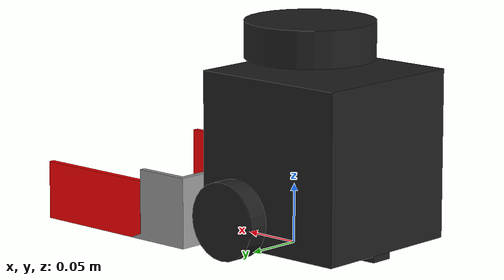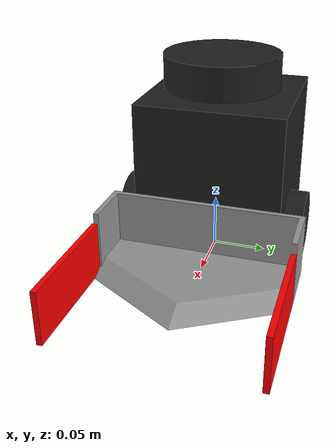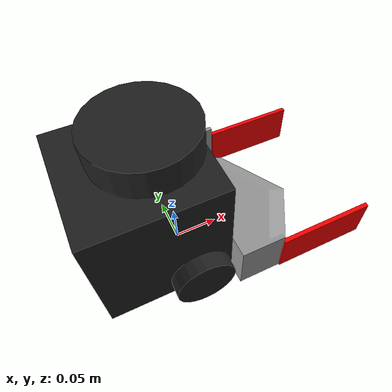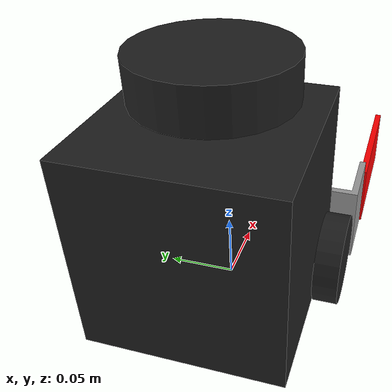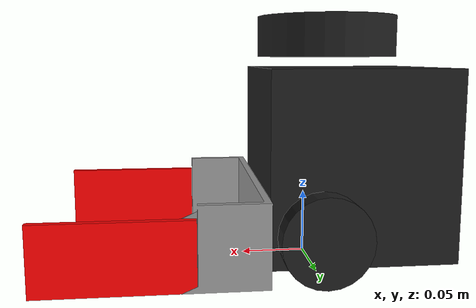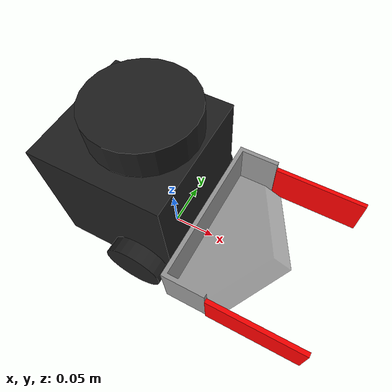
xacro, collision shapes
<?xml version="1.0" ?>
<robot name="turtlebot3_burger" xmlns:xacro="http://ros.org/wiki/xacro">
  <xacro:include filename="$(find turtlebot3_description)/urdf/common_properties.xacro"/>
  <xacro:include filename="$(find turtlebot3_description)/urdf/turtlebot3_burger.gazebo.xacro"/>
  <xacro:include filename="$(find turtlebot3_description)/urdf/turtlebot3.trans"/>

  <link name="base_footprint"/>

  <joint name="base_joint" type="fixed">
    <parent link="base_footprint"/>
    <child link="base_link"/>
    <origin xyz="0.0 0.0 0.010" rpy="0 0 0"/>
  </joint>

  <link name="base_link">
    <visual>
      <origin xyz="-0.032 0 0.0" rpy="0 0 0"/>
      <geometry>
        <mesh filename="package://turtlebot3_description/meshes/bases/burger_base.stl" scale="0.001 0.001 0.001"/>
      </geometry>
      <material name="light_black"/>
    </visual>

    <collision>
      <origin xyz="-0.032 0 0.070" rpy="0 0 0"/>
      <geometry>
        <box size="0.140 0.140 0.143"/>
      </geometry>
    </collision>

    <inertial>
      <origin xyz="0 0 0" rpy="0 0 0"/>
      <mass value="8.2573504e-01"/>
      <inertia ixx="2.2124416e-03" ixy="-1.2294101e-05" ixz="3.4938785e-05"
               iyy="2.1193702e-03" iyz="-5.0120904e-06"
               izz="2.0064271e-03" />
    </inertial>
  </link>

  <joint name="wheel_left_joint" type="continuous">
    <parent link="base_link"/>
    <child link="wheel_left_link"/>
    <origin xyz="0.0 0.08 0.023" rpy="-1.57 0 0"/>
    <axis xyz="0 0 1"/>
  </joint>

  <link name="wheel_left_link">
    <visual>
      <origin xyz="0 0 0" rpy="1.57 0 0"/>
      <geometry>
        <mesh filename="package://turtlebot3_description/meshes/wheels/left_tire.stl" scale="0.001 0.001 0.001"/>
      </geometry>
      <material name="dark"/>
    </visual>

    <collision>
      <origin xyz="0 0 0" rpy="0 0 0"/>
      <geometry>
        <cylinder length="0.018" radius="0.033"/>
      </geometry>
    </collision>

    <inertial>
      <origin xyz="0 0 0" />
      <mass value="2.8498940e-02" />
      <inertia ixx="1.1175580e-05" ixy="-4.2369783e-11" ixz="-5.9381719e-09"
               iyy="1.1192413e-05" iyz="-1.4400107e-11"
               izz="2.0712558e-05" />
      </inertial>
  </link>

  <joint name="wheel_right_joint" type="continuous">
    <parent link="base_link"/>
    <child link="wheel_right_link"/>
    <origin xyz="0.0 -0.080 0.023" rpy="-1.57 0 0"/>
    <axis xyz="0 0 1"/>
  </joint>

  <link name="wheel_right_link">
    <visual>
      <origin xyz="0 0 0" rpy="1.57 0 0"/>
      <geometry>
        <mesh filename="package://turtlebot3_description/meshes/wheels/right_tire.stl" scale="0.001 0.001 0.001"/>
      </geometry>
      <material name="dark"/>
    </visual>

    <collision>
      <origin xyz="0 0 0" rpy="0 0 0"/>
      <geometry>
        <cylinder length="0.018" radius="0.033"/>
      </geometry>
    </collision>

    <inertial>
      <origin xyz="0 0 0" />
      <mass value="2.8498940e-02" />
      <inertia ixx="1.1175580e-05" ixy="-4.2369783e-11" ixz="-5.9381719e-09"
               iyy="1.1192413e-05" iyz="-1.4400107e-11"
               izz="2.0712558e-05" />
      </inertial>
  </link>

  <joint name="caster_back_joint" type="fixed">
    <parent link="base_link"/>
    <child link="caster_back_link"/>
    <origin xyz="-0.081 0 -0.004" rpy="-1.57 0 0"/>
  </joint>

  <link name="caster_back_link">
    <collision>
      <origin xyz="0 0.001 0" rpy="0 0 0"/>
      <geometry>
        <box size="0.030 0.009 0.020"/>
      </geometry>
    </collision>

    <inertial>
      <origin xyz="0 0 0" />
      <mass value="0.005" />
      <inertia ixx="0.001" ixy="0.0" ixz="0.0"
               iyy="0.001" iyz="0.0"
               izz="0.001" />
    </inertial>
  </link>

  <joint name="imu_joint" type="fixed">
    <parent link="base_link"/>
    <child link="imu_link"/>
    <origin xyz="-0.032 0 0.068" rpy="0 0 0"/>
  </joint>

  <link name="imu_link"/>

  <joint name="scan_joint" type="fixed">
    <parent link="base_link"/>
    <child link="base_scan"/>
    <origin xyz="-0.032 0 0.172" rpy="0 0 0"/>
  </joint>

  <link name="base_scan">
    <visual>
      <origin xyz="0 0 0.0" rpy="0 0 0"/>
      <geometry>
        <mesh filename="package://turtlebot3_description/meshes/sensors/lds.stl" scale="0.001 0.001 0.001"/>
      </geometry>
      <material name="dark"/>
    </visual>

    <collision>
      <origin xyz="0.015 0 -0.0065" rpy="0 0 0"/>
      <geometry>
        <cylinder length="0.0315" radius="0.055"/>
      </geometry>
    </collision>

    <inertial>
      <mass value="0.114" />
      <origin xyz="0 0 0" />
      <inertia ixx="0.001" ixy="0.0" ixz="0.0"
               iyy="0.001" iyz="0.0"
               izz="0.001" />
    </inertial>
  </link>

  <link name="tray">
    <inertial>
      <origin xyz="-0.09 0.0 0.0" rpy="0.0 0.0 0.0"/>
      <mass value="0.03"/>
      <inertia ixx="0.0" ixy="0.0" ixz="0.0" iyy="0.0" iyz="0.0" izz="0.0"/>
    </inertial>
    <visual name="">
      <origin xyz="-0.09 0.0 0.0" rpy="0.0 0.0 0.0"/>
      <geometry>
          <mesh filename="package://turtlebot3_description/meshes/bases/tray.stl"/>
      </geometry>
    </visual>
    <collision>
      <origin xyz="-0.09 0.0 0.0" rpy="0.0 0.0 0.0"/>
      <geometry>
        <mesh filename="package://turtlebot3_description/meshes/bases/tray.stl"/>
      </geometry>
    </collision>

  </link>

  <joint name="tray_joint" type="fixed">
    <origin xyz="0.04 0.0 -0.006" rpy="1.5707 0.0 1.5707"/>
    <parent link="base_link"/>
    <child link="tray"/>
  </joint>

  <link name="caster_tray">

    <inertial>
      <origin xyz="0.0 0.0 0.0" />
      <mass value="0.005" />
      <inertia ixx="0.001" ixy="0.0" ixz="0.0"
               iyy="0.001" iyz="0.0"
               izz="0.001" />
    </inertial>

    <collision>
      <origin xyz="0.0 0.0 0.0" rpy="0.0 0.0 0.0"/>
      <geometry>
        <sphere radius="0.0025"/>
      </geometry>
      <material>
        <color rgba="1.0 0.0 0.0 1.0"/>
      </material>
    </collision>

    <visual name="">
      <origin xyz="0.0 0.0 0.0" rpy="0.0 0.0 0.0"/>
      <geometry>
        <sphere radius="0.0025"/>
      </geometry>
      <material name="">
        <color rgba="1.0 0.0 0.0 1.0"/>
      </material>
    </visual>
  </link>

 <joint name="caster_tray_joint" type="fixed">
    <parent link="tray"/>
    <child link="caster_tray"/>
    <origin xyz="0.0 -0.0005 0.05" rpy="0 0 0"/>
  </joint>

  <link name="flap_left">
    <inertial>
      <origin xyz="0.0 0.0 0.045" rpy="0.0 0.0 0.0"/>
      <mass value="0.01"/>
      <inertia ixx="1e-6" ixy="0.0" ixz="0.0" iyy="1e-6" iyz="0.0" izz="1e-6"/>
    </inertial>
    <visual name="">
      <origin xyz="0.0 0.0 0.045" rpy="0.0 0.0 0.0"/>
      <geometry>
        <box size="0.005 0.05 0.11"/>
      </geometry>
      <material name="">
        <color rgba="1.0 0.0 0.0 1.0"/>
      </material>
    </visual>
    <collision>
      <origin xyz="0.0 0.0 0.045" rpy="0.0 0.0 0.0"/>
      <geometry>
        <box size="0.005 0.05 0.11"/>
      </geometry>
    </collision>
  </link>

  <link name="flap_right">
    <inertial>
      <origin xyz="0.0 0.0 0.045" rpy="0.0 0.0 0.0"/>
      <mass value="0.01"/>
      <inertia ixx="1e-6" ixy="0.0" ixz="0.0" iyy="1e-6" iyz="0.0" izz="1e-6"/>
    </inertial>
    <visual name="">
      <origin xyz="0.0 0.0 0.045" rpy="0.0 0.0 0.0"/>
      <geometry>
        <box size="0.005 0.05 0.11"/>
      </geometry>
      <material name="">
        <color rgba="1.0 0.0 0.0 1.0"/>
      </material>
    </visual>
    <collision>
      <origin xyz="0.0 0.0 0.045" rpy="0.0 0.0 0.0"/>
      <geometry>
        <box size="0.005 0.05 0.11"/>
      </geometry>
    </collision>
  </link>

  <joint name="flap_left_joint" type="revolute">
    <origin xyz="0.09 0.025 0.06" rpy="0.0 0.0 0.0"/>
    <parent link="tray"/>
    <child link="flap_left"/>
    <axis xyz="0.0 1.0 0.0"/>
    <limit lower="-1.0" upper="0.28" effort="30.0" velocity="5"/>

  </joint>

  <joint name="flap_right_joint" type="revolute">
    <origin xyz="-0.089 0.025 0.06" rpy="0.0 0.0 0.0"/>
    <parent link="tray"/>
    <child link="flap_right"/>
    <axis xyz="0.0 -1.0 0.0"/>
    <limit lower="-1.0" upper="0.28" effort="30.0" velocity="5"/>

  </joint>

</robot>
